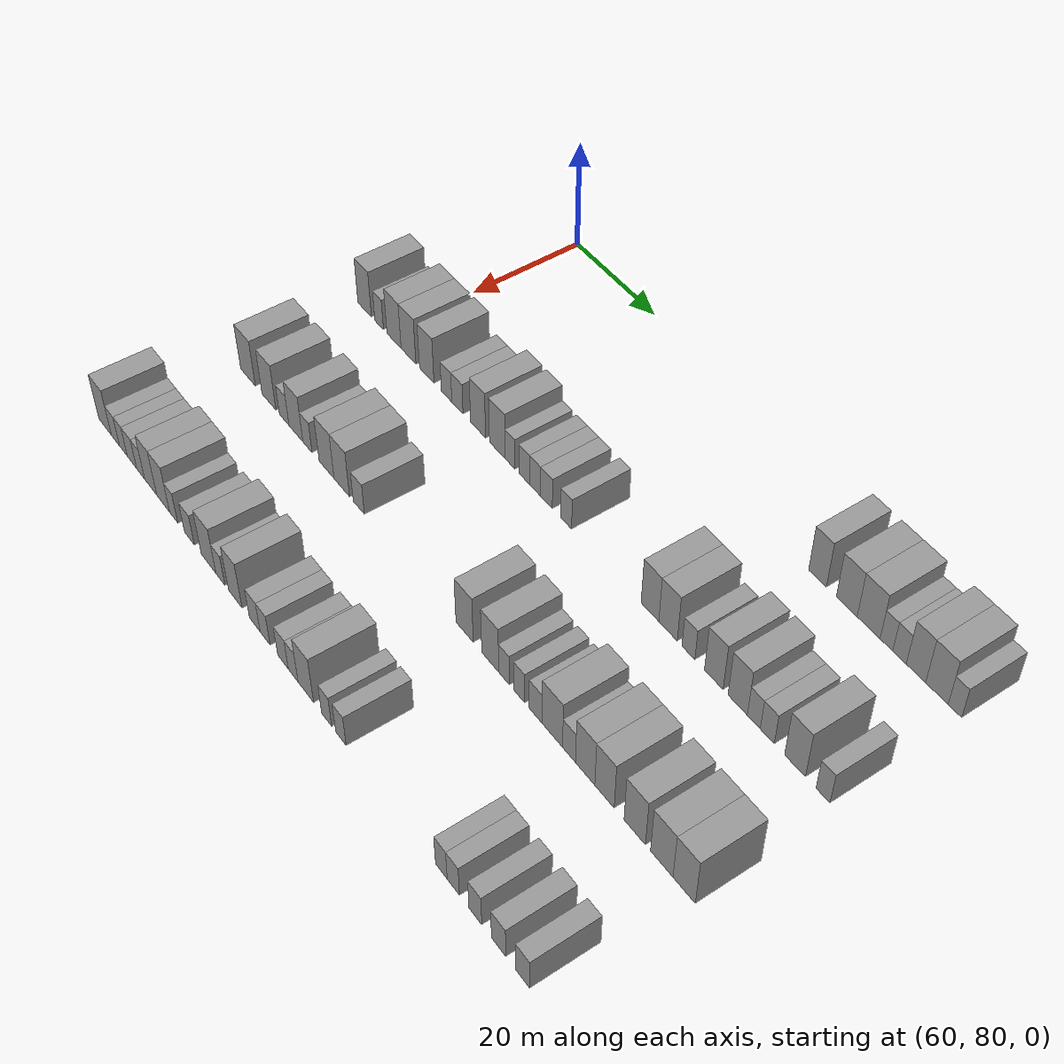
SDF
<sdf version="1.6">
 <world name="default">
  <model name="building_501">
   <static>1</static>
   <pose>69.0000 154.2161 0 0.000000 0.000000 0.000000</pose>
   <link name="link">
    <pose>0 0 4.50 0 0 0</pose>
    <collision name="collision"><geometry><box><size>10.0000 3.6310 9.0000</size></box></geometry></collision>
    <visual name="visual">
     <cast_shadows>0</cast_shadows>
     <geometry><box><size>10.0000 3.6310 9.0000</size></box></geometry>
     <material>
      <script>
       <uri>model://grey_wall/materials/scripts</uri>
       <uri>model://grey_wall/materials/textures</uri>
       <name>vrc/grey_wall</name>
      </script>
     </material>
    </visual>
   </link>
  </model>
  <model name="building_502">
   <static>1</static>
   <pose>69.0000 160.1065 0 0.000000 0.000000 0.000000</pose>
   <link name="link">
    <pose>0 0 4.50 0 0 0</pose>
    <collision name="collision"><geometry><box><size>10.0000 4.1499 9.0000</size></box></geometry></collision>
    <visual name="visual">
     <cast_shadows>0</cast_shadows>
     <geometry><box><size>10.0000 4.1499 9.0000</size></box></geometry>
     <material>
      <script>
       <uri>model://grey_wall/materials/scripts</uri>
       <uri>model://grey_wall/materials/textures</uri>
       <name>vrc/grey_wall</name>
      </script>
     </material>
    </visual>
   </link>
  </model>
  <model name="building_503">
   <static>1</static>
   <pose>69.0000 164.4250 0 0.000000 0.000000 0.000000</pose>
   <link name="link">
    <pose>0 0 4.50 0 0 0</pose>
    <collision name="collision"><geometry><box><size>10.0000 4.4872 9.0000</size></box></geometry></collision>
    <visual name="visual">
     <cast_shadows>0</cast_shadows>
     <geometry><box><size>10.0000 4.4872 9.0000</size></box></geometry>
     <material>
      <script>
       <uri>model://grey_wall/materials/scripts</uri>
       <uri>model://grey_wall/materials/textures</uri>
       <name>vrc/grey_wall</name>
      </script>
     </material>
    </visual>
   </link>
  </model>
  <model name="building_504">
   <static>1</static>
   <pose>69.0000 167.8853 0 0.000000 0.000000 0.000000</pose>
   <link name="link">
    <pose>0 0 3.00 0 0 0</pose>
    <collision name="collision"><geometry><box><size>10.0000 2.4332 6.0000</size></box></geometry></collision>
    <visual name="visual">
     <cast_shadows>0</cast_shadows>
     <geometry><box><size>10.0000 2.4332 6.0000</size></box></geometry>
     <material>
      <script>
       <uri>model://grey_wall/materials/scripts</uri>
       <uri>model://grey_wall/materials/textures</uri>
       <name>vrc/grey_wall</name>
      </script>
     </material>
    </visual>
   </link>
  </model>
  <model name="building_505">
   <static>1</static>
   <pose>69.0000 170.3889 0 0.000000 0.000000 0.000000</pose>
   <link name="link">
    <pose>0 0 3.00 0 0 0</pose>
    <collision name="collision"><geometry><box><size>10.0000 2.5740 6.0000</size></box></geometry></collision>
    <visual name="visual">
     <cast_shadows>0</cast_shadows>
     <geometry><box><size>10.0000 2.5740 6.0000</size></box></geometry>
     <material>
      <script>
       <uri>model://grey_wall/materials/scripts</uri>
       <uri>model://grey_wall/materials/textures</uri>
       <name>vrc/grey_wall</name>
      </script>
     </material>
    </visual>
   </link>
  </model>
  <model name="building_506">
   <static>1</static>
   <pose>69.0000 173.4881 0 0.000000 0.000000 0.000000</pose>
   <link name="link">
    <pose>0 0 4.50 0 0 0</pose>
    <collision name="collision"><geometry><box><size>10.0000 3.6244 9.0000</size></box></geometry></collision>
    <visual name="visual">
     <cast_shadows>0</cast_shadows>
     <geometry><box><size>10.0000 3.6244 9.0000</size></box></geometry>
     <material>
      <script>
       <uri>model://grey_wall/materials/scripts</uri>
       <uri>model://grey_wall/materials/textures</uri>
       <name>vrc/grey_wall</name>
      </script>
     </material>
    </visual>
   </link>
  </model>
  <model name="building_507">
   <static>1</static>
   <pose>69.0000 177.3766 0 0.000000 0.000000 0.000000</pose>
   <link name="link">
    <pose>0 0 4.50 0 0 0</pose>
    <collision name="collision"><geometry><box><size>10.0000 4.1527 9.0000</size></box></geometry></collision>
    <visual name="visual">
     <cast_shadows>0</cast_shadows>
     <geometry><box><size>10.0000 4.1527 9.0000</size></box></geometry>
     <material>
      <script>
       <uri>model://grey_wall/materials/scripts</uri>
       <uri>model://grey_wall/materials/textures</uri>
       <name>vrc/grey_wall</name>
      </script>
     </material>
    </visual>
   </link>
  </model>
  <model name="building_508">
   <static>1</static>
   <pose>69.0000 180.6867 0 0.000000 0.000000 0.000000</pose>
   <link name="link">
    <pose>0 0 3.00 0 0 0</pose>
    <collision name="collision"><geometry><box><size>10.0000 2.4676 6.0000</size></box></geometry></collision>
    <visual name="visual">
     <cast_shadows>0</cast_shadows>
     <geometry><box><size>10.0000 2.4676 6.0000</size></box></geometry>
     <material>
      <script>
       <uri>model://grey_wall/materials/scripts</uri>
       <uri>model://grey_wall/materials/textures</uri>
       <name>vrc/grey_wall</name>
      </script>
     </material>
    </visual>
   </link>
  </model>
  <model name="building_671">
   <static>1</static>
   <pose>91.0000 73.6029 0 0.000000 0.000000 0.000000</pose>
   <link name="link">
    <pose>0 0 4.50 0 0 0</pose>
    <collision name="collision"><geometry><box><size>10.0000 3.9450 9.0000</size></box></geometry></collision>
    <visual name="visual">
     <cast_shadows>0</cast_shadows>
     <geometry><box><size>10.0000 3.9450 9.0000</size></box></geometry>
     <material>
      <script>
       <uri>model://grey_wall/materials/scripts</uri>
       <uri>model://grey_wall/materials/textures</uri>
       <name>vrc/grey_wall</name>
      </script>
     </material>
    </visual>
   </link>
  </model>
  <model name="building_672">
   <static>1</static>
   <pose>91.0000 77.8221 0 0.000000 0.000000 0.000000</pose>
   <link name="link">
    <pose>0 0 3.00 0 0 0</pose>
    <collision name="collision"><geometry><box><size>10.0000 2.4935 6.0000</size></box></geometry></collision>
    <visual name="visual">
     <cast_shadows>0</cast_shadows>
     <geometry><box><size>10.0000 2.4935 6.0000</size></box></geometry>
     <material>
      <script>
       <uri>model://grey_wall/materials/scripts</uri>
       <uri>model://grey_wall/materials/textures</uri>
       <name>vrc/grey_wall</name>
      </script>
     </material>
    </visual>
   </link>
  </model>
  <model name="building_673">
   <static>1</static>
   <pose>91.0000 82.0843 0 0.000000 0.000000 0.000000</pose>
   <link name="link">
    <pose>0 0 4.50 0 0 0</pose>
    <collision name="collision"><geometry><box><size>10.0000 4.0307 9.0000</size></box></geometry></collision>
    <visual name="visual">
     <cast_shadows>0</cast_shadows>
     <geometry><box><size>10.0000 4.0307 9.0000</size></box></geometry>
     <material>
      <script>
       <uri>model://grey_wall/materials/scripts</uri>
       <uri>model://grey_wall/materials/textures</uri>
       <name>vrc/grey_wall</name>
      </script>
     </material>
    </visual>
   </link>
  </model>
  <model name="building_674">
   <static>1</static>
   <pose>91.0000 86.1808 0 0.000000 0.000000 0.000000</pose>
   <link name="link">
    <pose>0 0 4.50 0 0 0</pose>
    <collision name="collision"><geometry><box><size>10.0000 4.1624 9.0000</size></box></geometry></collision>
    <visual name="visual">
     <cast_shadows>0</cast_shadows>
     <geometry><box><size>10.0000 4.1624 9.0000</size></box></geometry>
     <material>
      <script>
       <uri>model://grey_wall/materials/scripts</uri>
       <uri>model://grey_wall/materials/textures</uri>
       <name>vrc/grey_wall</name>
      </script>
     </material>
    </visual>
   </link>
  </model>
  <model name="building_675">
   <static>1</static>
   <pose>91.0000 91.2529 0 0.000000 0.000000 0.000000</pose>
   <link name="link">
    <pose>0 0 4.50 0 0 0</pose>
    <collision name="collision"><geometry><box><size>10.0000 3.9817 9.0000</size></box></geometry></collision>
    <visual name="visual">
     <cast_shadows>0</cast_shadows>
     <geometry><box><size>10.0000 3.9817 9.0000</size></box></geometry>
     <material>
      <script>
       <uri>model://grey_wall/materials/scripts</uri>
       <uri>model://grey_wall/materials/textures</uri>
       <name>vrc/grey_wall</name>
      </script>
     </material>
    </visual>
   </link>
  </model>
  <model name="building_676">
   <static>1</static>
   <pose>91.0000 96.6469 0 0.000000 0.000000 0.000000</pose>
   <link name="link">
    <pose>0 0 3.00 0 0 0</pose>
    <collision name="collision"><geometry><box><size>10.0000 2.8063 6.0000</size></box></geometry></collision>
    <visual name="visual">
     <cast_shadows>0</cast_shadows>
     <geometry><box><size>10.0000 2.8063 6.0000</size></box></geometry>
     <material>
      <script>
       <uri>model://grey_wall/materials/scripts</uri>
       <uri>model://grey_wall/materials/textures</uri>
       <name>vrc/grey_wall</name>
      </script>
     </material>
    </visual>
   </link>
  </model>
  <model name="building_677">
   <static>1</static>
   <pose>91.0000 99.5297 0 0.000000 0.000000 0.000000</pose>
   <link name="link">
    <pose>0 0 3.00 0 0 0</pose>
    <collision name="collision"><geometry><box><size>10.0000 2.9593 6.0000</size></box></geometry></collision>
    <visual name="visual">
     <cast_shadows>0</cast_shadows>
     <geometry><box><size>10.0000 2.9593 6.0000</size></box></geometry>
     <material>
      <script>
       <uri>model://grey_wall/materials/scripts</uri>
       <uri>model://grey_wall/materials/textures</uri>
       <name>vrc/grey_wall</name>
      </script>
     </material>
    </visual>
   </link>
  </model>
  <model name="building_678">
   <static>1</static>
   <pose>91.0000 104.9585 0 0.000000 0.000000 0.000000</pose>
   <link name="link">
    <pose>0 0 4.50 0 0 0</pose>
    <collision name="collision"><geometry><box><size>10.0000 3.8983 9.0000</size></box></geometry></collision>
    <visual name="visual">
     <cast_shadows>0</cast_shadows>
     <geometry><box><size>10.0000 3.8983 9.0000</size></box></geometry>
     <material>
      <script>
       <uri>model://grey_wall/materials/scripts</uri>
       <uri>model://grey_wall/materials/textures</uri>
       <name>vrc/grey_wall</name>
      </script>
     </material>
    </visual>
   </link>
  </model>
  <model name="building_679">
   <static>1</static>
   <pose>91.0000 109.9000 0 0.000000 0.000000 0.000000</pose>
   <link name="link">
    <pose>0 0 4.50 0 0 0</pose>
    <collision name="collision"><geometry><box><size>10.0000 3.9847 9.0000</size></box></geometry></collision>
    <visual name="visual">
     <cast_shadows>0</cast_shadows>
     <geometry><box><size>10.0000 3.9847 9.0000</size></box></geometry>
     <material>
      <script>
       <uri>model://grey_wall/materials/scripts</uri>
       <uri>model://grey_wall/materials/textures</uri>
       <name>vrc/grey_wall</name>
      </script>
     </material>
    </visual>
   </link>
  </model>
  <model name="building_680">
   <static>1</static>
   <pose>91.0000 113.1168 0 0.000000 0.000000 0.000000</pose>
   <link name="link">
    <pose>0 0 3.00 0 0 0</pose>
    <collision name="collision"><geometry><box><size>10.0000 2.4487 6.0000</size></box></geometry></collision>
    <visual name="visual">
     <cast_shadows>0</cast_shadows>
     <geometry><box><size>10.0000 2.4487 6.0000</size></box></geometry>
     <material>
      <script>
       <uri>model://grey_wall/materials/scripts</uri>
       <uri>model://grey_wall/materials/textures</uri>
       <name>vrc/grey_wall</name>
      </script>
     </material>
    </visual>
   </link>
  </model>
  <model name="building_681">
   <static>1</static>
   <pose>91.0000 116.6339 0 0.000000 0.000000 0.000000</pose>
   <link name="link">
    <pose>0 0 3.00 0 0 0</pose>
    <collision name="collision"><geometry><box><size>10.0000 2.5855 6.0000</size></box></geometry></collision>
    <visual name="visual">
     <cast_shadows>0</cast_shadows>
     <geometry><box><size>10.0000 2.5855 6.0000</size></box></geometry>
     <material>
      <script>
       <uri>model://grey_wall/materials/scripts</uri>
       <uri>model://grey_wall/materials/textures</uri>
       <name>vrc/grey_wall</name>
      </script>
     </material>
    </visual>
   </link>
  </model>
  <model name="building_682">
   <static>1</static>
   <pose>91.0000 119.2786 0 0.000000 0.000000 0.000000</pose>
   <link name="link">
    <pose>0 0 3.00 0 0 0</pose>
    <collision name="collision"><geometry><box><size>10.0000 2.7039 6.0000</size></box></geometry></collision>
    <visual name="visual">
     <cast_shadows>0</cast_shadows>
     <geometry><box><size>10.0000 2.7039 6.0000</size></box></geometry>
     <material>
      <script>
       <uri>model://grey_wall/materials/scripts</uri>
       <uri>model://grey_wall/materials/textures</uri>
       <name>vrc/grey_wall</name>
      </script>
     </material>
    </visual>
   </link>
  </model>
  <model name="building_683">
   <static>1</static>
   <pose>91.0000 122.0599 0 0.000000 0.000000 0.000000</pose>
   <link name="link">
    <pose>0 0 3.00 0 0 0</pose>
    <collision name="collision"><geometry><box><size>10.0000 2.8586 6.0000</size></box></geometry></collision>
    <visual name="visual">
     <cast_shadows>0</cast_shadows>
     <geometry><box><size>10.0000 2.8586 6.0000</size></box></geometry>
     <material>
      <script>
       <uri>model://grey_wall/materials/scripts</uri>
       <uri>model://grey_wall/materials/textures</uri>
       <name>vrc/grey_wall</name>
      </script>
     </material>
    </visual>
   </link>
  </model>
  <model name="building_684">
   <static>1</static>
   <pose>91.0000 126.7881 0 0.000000 0.000000 0.000000</pose>
   <link name="link">
    <pose>0 0 3.00 0 0 0</pose>
    <collision name="collision"><geometry><box><size>10.0000 2.5979 6.0000</size></box></geometry></collision>
    <visual name="visual">
     <cast_shadows>0</cast_shadows>
     <geometry><box><size>10.0000 2.5979 6.0000</size></box></geometry>
     <material>
      <script>
       <uri>model://grey_wall/materials/scripts</uri>
       <uri>model://grey_wall/materials/textures</uri>
       <name>vrc/grey_wall</name>
      </script>
     </material>
    </visual>
   </link>
  </model>
  <model name="building_685">
   <static>1</static>
   <pose>91.0000 145.8479 0 0.000000 0.000000 0.000000</pose>
   <link name="link">
    <pose>0 0 4.50 0 0 0</pose>
    <collision name="collision"><geometry><box><size>10.0000 3.8405 9.0000</size></box></geometry></collision>
    <visual name="visual">
     <cast_shadows>0</cast_shadows>
     <geometry><box><size>10.0000 3.8405 9.0000</size></box></geometry>
     <material>
      <script>
       <uri>model://grey_wall/materials/scripts</uri>
       <uri>model://grey_wall/materials/textures</uri>
       <name>vrc/grey_wall</name>
      </script>
     </material>
    </visual>
   </link>
  </model>
  <model name="building_686">
   <static>1</static>
   <pose>91.0000 149.7458 0 0.000000 0.000000 0.000000</pose>
   <link name="link">
    <pose>0 0 4.50 0 0 0</pose>
    <collision name="collision"><geometry><box><size>10.0000 3.9554 9.0000</size></box></geometry></collision>
    <visual name="visual">
     <cast_shadows>0</cast_shadows>
     <geometry><box><size>10.0000 3.9554 9.0000</size></box></geometry>
     <material>
      <script>
       <uri>model://grey_wall/materials/scripts</uri>
       <uri>model://grey_wall/materials/textures</uri>
       <name>vrc/grey_wall</name>
      </script>
     </material>
    </visual>
   </link>
  </model>
  <model name="building_687">
   <static>1</static>
   <pose>91.0000 154.0762 0 0.000000 0.000000 0.000000</pose>
   <link name="link">
    <pose>0 0 3.00 0 0 0</pose>
    <collision name="collision"><geometry><box><size>10.0000 2.7052 6.0000</size></box></geometry></collision>
    <visual name="visual">
     <cast_shadows>0</cast_shadows>
     <geometry><box><size>10.0000 2.7052 6.0000</size></box></geometry>
     <material>
      <script>
       <uri>model://grey_wall/materials/scripts</uri>
       <uri>model://grey_wall/materials/textures</uri>
       <name>vrc/grey_wall</name>
      </script>
     </material>
    </visual>
   </link>
  </model>
  <model name="building_688">
   <static>1</static>
   <pose>91.0000 159.3358 0 0.000000 0.000000 0.000000</pose>
   <link name="link">
    <pose>0 0 4.50 0 0 0</pose>
    <collision name="collision"><geometry><box><size>10.0000 3.8141 9.0000</size></box></geometry></collision>
    <visual name="visual">
     <cast_shadows>0</cast_shadows>
     <geometry><box><size>10.0000 3.8141 9.0000</size></box></geometry>
     <material>
      <script>
       <uri>model://grey_wall/materials/scripts</uri>
       <uri>model://grey_wall/materials/textures</uri>
       <name>vrc/grey_wall</name>
      </script>
     </material>
    </visual>
   </link>
  </model>
  <model name="building_689">
   <static>1</static>
   <pose>91.0000 164.1728 0 0.000000 0.000000 0.000000</pose>
   <link name="link">
    <pose>0 0 4.50 0 0 0</pose>
    <collision name="collision"><geometry><box><size>10.0000 3.8598 9.0000</size></box></geometry></collision>
    <visual name="visual">
     <cast_shadows>0</cast_shadows>
     <geometry><box><size>10.0000 3.8598 9.0000</size></box></geometry>
     <material>
      <script>
       <uri>model://grey_wall/materials/scripts</uri>
       <uri>model://grey_wall/materials/textures</uri>
       <name>vrc/grey_wall</name>
      </script>
     </material>
    </visual>
   </link>
  </model>
  <model name="building_690">
   <static>1</static>
   <pose>91.0000 167.3765 0 0.000000 0.000000 0.000000</pose>
   <link name="link">
    <pose>0 0 3.00 0 0 0</pose>
    <collision name="collision"><geometry><box><size>10.0000 2.5475 6.0000</size></box></geometry></collision>
    <visual name="visual">
     <cast_shadows>0</cast_shadows>
     <geometry><box><size>10.0000 2.5475 6.0000</size></box></geometry>
     <material>
      <script>
       <uri>model://grey_wall/materials/scripts</uri>
       <uri>model://grey_wall/materials/textures</uri>
       <name>vrc/grey_wall</name>
      </script>
     </material>
    </visual>
   </link>
  </model>
  <model name="building_691">
   <static>1</static>
   <pose>91.0000 170.0229 0 0.000000 0.000000 0.000000</pose>
   <link name="link">
    <pose>0 0 3.00 0 0 0</pose>
    <collision name="collision"><geometry><box><size>10.0000 2.7454 6.0000</size></box></geometry></collision>
    <visual name="visual">
     <cast_shadows>0</cast_shadows>
     <geometry><box><size>10.0000 2.7454 6.0000</size></box></geometry>
     <material>
      <script>
       <uri>model://grey_wall/materials/scripts</uri>
       <uri>model://grey_wall/materials/textures</uri>
       <name>vrc/grey_wall</name>
      </script>
     </material>
    </visual>
   </link>
  </model>
  <model name="building_692">
   <static>1</static>
   <pose>91.0000 175.3653 0 0.000000 0.000000 0.000000</pose>
   <link name="link">
    <pose>0 0 4.50 0 0 0</pose>
    <collision name="collision"><geometry><box><size>10.0000 3.9392 9.0000</size></box></geometry></collision>
    <visual name="visual">
     <cast_shadows>0</cast_shadows>
     <geometry><box><size>10.0000 3.9392 9.0000</size></box></geometry>
     <material>
      <script>
       <uri>model://grey_wall/materials/scripts</uri>
       <uri>model://grey_wall/materials/textures</uri>
       <name>vrc/grey_wall</name>
      </script>
     </material>
    </visual>
   </link>
  </model>
  <model name="building_693">
   <static>1</static>
   <pose>91.0000 180.6300 0 0.000000 0.000000 0.000000</pose>
   <link name="link">
    <pose>0 0 3.00 0 0 0</pose>
    <collision name="collision"><geometry><box><size>10.0000 2.5902 6.0000</size></box></geometry></collision>
    <visual name="visual">
     <cast_shadows>0</cast_shadows>
     <geometry><box><size>10.0000 2.5902 6.0000</size></box></geometry>
     <material>
      <script>
       <uri>model://grey_wall/materials/scripts</uri>
       <uri>model://grey_wall/materials/textures</uri>
       <name>vrc/grey_wall</name>
      </script>
     </material>
    </visual>
   </link>
  </model>
  <model name="building_857">
   <static>1</static>
   <pose>113.0000 76.3529 0 0.000000 0.000000 0.000000</pose>
   <link name="link">
    <pose>0 0 4.50 0 0 0</pose>
    <collision name="collision"><geometry><box><size>10.0000 4.4462 9.0000</size></box></geometry></collision>
    <visual name="visual">
     <cast_shadows>0</cast_shadows>
     <geometry><box><size>10.0000 4.4462 9.0000</size></box></geometry>
     <material>
      <script>
       <uri>model://grey_wall/materials/scripts</uri>
       <uri>model://grey_wall/materials/textures</uri>
       <name>vrc/grey_wall</name>
      </script>
     </material>
    </visual>
   </link>
  </model>
  <model name="building_858">
   <static>1</static>
   <pose>113.0000 82.6550 0 0.000000 0.000000 0.000000</pose>
   <link name="link">
    <pose>0 0 4.50 0 0 0</pose>
    <collision name="collision"><geometry><box><size>10.0000 4.1581 9.0000</size></box></geometry></collision>
    <visual name="visual">
     <cast_shadows>0</cast_shadows>
     <geometry><box><size>10.0000 4.1581 9.0000</size></box></geometry>
     <material>
      <script>
       <uri>model://grey_wall/materials/scripts</uri>
       <uri>model://grey_wall/materials/textures</uri>
       <name>vrc/grey_wall</name>
      </script>
     </material>
    </visual>
   </link>
  </model>
  <model name="building_859">
   <static>1</static>
   <pose>113.0000 87.1227 0 0.000000 0.000000 0.000000</pose>
   <link name="link">
    <pose>0 0 3.00 0 0 0</pose>
    <collision name="collision"><geometry><box><size>10.0000 2.7773 6.0000</size></box></geometry></collision>
    <visual name="visual">
     <cast_shadows>0</cast_shadows>
     <geometry><box><size>10.0000 2.7773 6.0000</size></box></geometry>
     <material>
      <script>
       <uri>model://grey_wall/materials/scripts</uri>
       <uri>model://grey_wall/materials/textures</uri>
       <name>vrc/grey_wall</name>
      </script>
     </material>
    </visual>
   </link>
  </model>
  <model name="building_860">
   <static>1</static>
   <pose>113.0000 90.5092 0 0.000000 0.000000 0.000000</pose>
   <link name="link">
    <pose>0 0 4.50 0 0 0</pose>
    <collision name="collision"><geometry><box><size>10.0000 3.9956 9.0000</size></box></geometry></collision>
    <visual name="visual">
     <cast_shadows>0</cast_shadows>
     <geometry><box><size>10.0000 3.9956 9.0000</size></box></geometry>
     <material>
      <script>
       <uri>model://grey_wall/materials/scripts</uri>
       <uri>model://grey_wall/materials/textures</uri>
       <name>vrc/grey_wall</name>
      </script>
     </material>
    </visual>
   </link>
  </model>
  <model name="building_861">
   <static>1</static>
   <pose>113.0000 93.7954 0 0.000000 0.000000 0.000000</pose>
   <link name="link">
    <pose>0 0 3.00 0 0 0</pose>
    <collision name="collision"><geometry><box><size>10.0000 2.5767 6.0000</size></box></geometry></collision>
    <visual name="visual">
     <cast_shadows>0</cast_shadows>
     <geometry><box><size>10.0000 2.5767 6.0000</size></box></geometry>
     <material>
      <script>
       <uri>model://grey_wall/materials/scripts</uri>
       <uri>model://grey_wall/materials/textures</uri>
       <name>vrc/grey_wall</name>
      </script>
     </material>
    </visual>
   </link>
  </model>
  <model name="building_862">
   <static>1</static>
   <pose>113.0000 99.1512 0 0.000000 0.000000 0.000000</pose>
   <link name="link">
    <pose>0 0 4.50 0 0 0</pose>
    <collision name="collision"><geometry><box><size>10.0000 4.1348 9.0000</size></box></geometry></collision>
    <visual name="visual">
     <cast_shadows>0</cast_shadows>
     <geometry><box><size>10.0000 4.1348 9.0000</size></box></geometry>
     <material>
      <script>
       <uri>model://grey_wall/materials/scripts</uri>
       <uri>model://grey_wall/materials/textures</uri>
       <name>vrc/grey_wall</name>
      </script>
     </material>
    </visual>
   </link>
  </model>
  <model name="building_863">
   <static>1</static>
   <pose>113.0000 103.3302 0 0.000000 0.000000 0.000000</pose>
   <link name="link">
    <pose>0 0 4.50 0 0 0</pose>
    <collision name="collision"><geometry><box><size>10.0000 4.2232 9.0000</size></box></geometry></collision>
    <visual name="visual">
     <cast_shadows>0</cast_shadows>
     <geometry><box><size>10.0000 4.2232 9.0000</size></box></geometry>
     <material>
      <script>
       <uri>model://grey_wall/materials/scripts</uri>
       <uri>model://grey_wall/materials/textures</uri>
       <name>vrc/grey_wall</name>
      </script>
     </material>
    </visual>
   </link>
  </model>
  <model name="building_864">
   <static>1</static>
   <pose>113.0000 107.9316 0 0.000000 0.000000 0.000000</pose>
   <link name="link">
    <pose>0 0 3.00 0 0 0</pose>
    <collision name="collision"><geometry><box><size>10.0000 2.9796 6.0000</size></box></geometry></collision>
    <visual name="visual">
     <cast_shadows>0</cast_shadows>
     <geometry><box><size>10.0000 2.9796 6.0000</size></box></geometry>
     <material>
      <script>
       <uri>model://grey_wall/materials/scripts</uri>
       <uri>model://grey_wall/materials/textures</uri>
       <name>vrc/grey_wall</name>
      </script>
     </material>
    </visual>
   </link>
  </model>
  <model name="building_865">
   <static>1</static>
   <pose>113.0000 134.5633 0 0.000000 0.000000 0.000000</pose>
   <link name="link">
    <pose>0 0 4.50 0 0 0</pose>
    <collision name="collision"><geometry><box><size>10.0000 4.0946 9.0000</size></box></geometry></collision>
    <visual name="visual">
     <cast_shadows>0</cast_shadows>
     <geometry><box><size>10.0000 4.0946 9.0000</size></box></geometry>
     <material>
      <script>
       <uri>model://grey_wall/materials/scripts</uri>
       <uri>model://grey_wall/materials/textures</uri>
       <name>vrc/grey_wall</name>
      </script>
     </material>
    </visual>
   </link>
  </model>
  <model name="building_866">
   <static>1</static>
   <pose>113.0000 140.5781 0 0.000000 0.000000 0.000000</pose>
   <link name="link">
    <pose>0 0 4.50 0 0 0</pose>
    <collision name="collision"><geometry><box><size>10.0000 3.9350 9.0000</size></box></geometry></collision>
    <visual name="visual">
     <cast_shadows>0</cast_shadows>
     <geometry><box><size>10.0000 3.9350 9.0000</size></box></geometry>
     <material>
      <script>
       <uri>model://grey_wall/materials/scripts</uri>
       <uri>model://grey_wall/materials/textures</uri>
       <name>vrc/grey_wall</name>
      </script>
     </material>
    </visual>
   </link>
  </model>
  <model name="building_867">
   <static>1</static>
   <pose>113.0000 143.7592 0 0.000000 0.000000 0.000000</pose>
   <link name="link">
    <pose>0 0 3.00 0 0 0</pose>
    <collision name="collision"><geometry><box><size>10.0000 2.4272 6.0000</size></box></geometry></collision>
    <visual name="visual">
     <cast_shadows>0</cast_shadows>
     <geometry><box><size>10.0000 2.4272 6.0000</size></box></geometry>
     <material>
      <script>
       <uri>model://grey_wall/materials/scripts</uri>
       <uri>model://grey_wall/materials/textures</uri>
       <name>vrc/grey_wall</name>
      </script>
     </material>
    </visual>
   </link>
  </model>
  <model name="building_868">
   <static>1</static>
   <pose>113.0000 147.1891 0 0.000000 0.000000 0.000000</pose>
   <link name="link">
    <pose>0 0 3.00 0 0 0</pose>
    <collision name="collision"><geometry><box><size>10.0000 2.4325 6.0000</size></box></geometry></collision>
    <visual name="visual">
     <cast_shadows>0</cast_shadows>
     <geometry><box><size>10.0000 2.4325 6.0000</size></box></geometry>
     <material>
      <script>
       <uri>model://grey_wall/materials/scripts</uri>
       <uri>model://grey_wall/materials/textures</uri>
       <name>vrc/grey_wall</name>
      </script>
     </material>
    </visual>
   </link>
  </model>
  <model name="building_869">
   <static>1</static>
   <pose>113.0000 150.8046 0 0.000000 0.000000 0.000000</pose>
   <link name="link">
    <pose>0 0 3.00 0 0 0</pose>
    <collision name="collision"><geometry><box><size>10.0000 2.7986 6.0000</size></box></geometry></collision>
    <visual name="visual">
     <cast_shadows>0</cast_shadows>
     <geometry><box><size>10.0000 2.7986 6.0000</size></box></geometry>
     <material>
      <script>
       <uri>model://grey_wall/materials/scripts</uri>
       <uri>model://grey_wall/materials/textures</uri>
       <name>vrc/grey_wall</name>
      </script>
     </material>
    </visual>
   </link>
  </model>
  <model name="building_870">
   <static>1</static>
   <pose>113.0000 154.4270 0 0.000000 0.000000 0.000000</pose>
   <link name="link">
    <pose>0 0 4.50 0 0 0</pose>
    <collision name="collision"><geometry><box><size>10.0000 4.4460 9.0000</size></box></geometry></collision>
    <visual name="visual">
     <cast_shadows>0</cast_shadows>
     <geometry><box><size>10.0000 4.4460 9.0000</size></box></geometry>
     <material>
      <script>
       <uri>model://grey_wall/materials/scripts</uri>
       <uri>model://grey_wall/materials/textures</uri>
       <name>vrc/grey_wall</name>
      </script>
     </material>
    </visual>
   </link>
  </model>
  <model name="building_871">
   <static>1</static>
   <pose>113.0000 158.0228 0 0.000000 0.000000 0.000000</pose>
   <link name="link">
    <pose>0 0 3.00 0 0 0</pose>
    <collision name="collision"><geometry><box><size>10.0000 2.7457 6.0000</size></box></geometry></collision>
    <visual name="visual">
     <cast_shadows>0</cast_shadows>
     <geometry><box><size>10.0000 2.7457 6.0000</size></box></geometry>
     <material>
      <script>
       <uri>model://grey_wall/materials/scripts</uri>
       <uri>model://grey_wall/materials/textures</uri>
       <name>vrc/grey_wall</name>
      </script>
     </material>
    </visual>
   </link>
  </model>
  <model name="building_872">
   <static>1</static>
   <pose>113.0000 161.4268 0 0.000000 0.000000 0.000000</pose>
   <link name="link">
    <pose>0 0 4.50 0 0 0</pose>
    <collision name="collision"><geometry><box><size>10.0000 4.0623 9.0000</size></box></geometry></collision>
    <visual name="visual">
     <cast_shadows>0</cast_shadows>
     <geometry><box><size>10.0000 4.0623 9.0000</size></box></geometry>
     <material>
      <script>
       <uri>model://grey_wall/materials/scripts</uri>
       <uri>model://grey_wall/materials/textures</uri>
       <name>vrc/grey_wall</name>
      </script>
     </material>
    </visual>
   </link>
  </model>
  <model name="building_873">
   <static>1</static>
   <pose>113.0000 165.4448 0 0.000000 0.000000 0.000000</pose>
   <link name="link">
    <pose>0 0 4.50 0 0 0</pose>
    <collision name="collision"><geometry><box><size>10.0000 3.9738 9.0000</size></box></geometry></collision>
    <visual name="visual">
     <cast_shadows>0</cast_shadows>
     <geometry><box><size>10.0000 3.9738 9.0000</size></box></geometry>
     <material>
      <script>
       <uri>model://grey_wall/materials/scripts</uri>
       <uri>model://grey_wall/materials/textures</uri>
       <name>vrc/grey_wall</name>
      </script>
     </material>
    </visual>
   </link>
  </model>
  <model name="building_874">
   <static>1</static>
   <pose>113.0000 171.5620 0 0.000000 0.000000 0.000000</pose>
   <link name="link">
    <pose>0 0 4.50 0 0 0</pose>
    <collision name="collision"><geometry><box><size>10.0000 4.2605 9.0000</size></box></geometry></collision>
    <visual name="visual">
     <cast_shadows>0</cast_shadows>
     <geometry><box><size>10.0000 4.2605 9.0000</size></box></geometry>
     <material>
      <script>
       <uri>model://grey_wall/materials/scripts</uri>
       <uri>model://grey_wall/materials/textures</uri>
       <name>vrc/grey_wall</name>
      </script>
     </material>
    </visual>
   </link>
  </model>
  <model name="building_875">
   <static>1</static>
   <pose>113.0000 176.8735 0 0.000000 0.000000 0.000000</pose>
   <link name="link">
    <pose>0 0 4.50 0 0 0</pose>
    <collision name="collision"><geometry><box><size>10.0000 4.3626 9.0000</size></box></geometry></collision>
    <visual name="visual">
     <cast_shadows>0</cast_shadows>
     <geometry><box><size>10.0000 4.3626 9.0000</size></box></geometry>
     <material>
      <script>
       <uri>model://grey_wall/materials/scripts</uri>
       <uri>model://grey_wall/materials/textures</uri>
       <name>vrc/grey_wall</name>
      </script>
     </material>
    </visual>
   </link>
  </model>
  <model name="building_876">
   <static>1</static>
   <pose>113.0000 181.1765 0 0.000000 0.000000 0.000000</pose>
   <link name="link">
    <pose>0 0 4.50 0 0 0</pose>
    <collision name="collision"><geometry><box><size>10.0000 4.2434 9.0000</size></box></geometry></collision>
    <visual name="visual">
     <cast_shadows>0</cast_shadows>
     <geometry><box><size>10.0000 4.2434 9.0000</size></box></geometry>
     <material>
      <script>
       <uri>model://grey_wall/materials/scripts</uri>
       <uri>model://grey_wall/materials/textures</uri>
       <name>vrc/grey_wall</name>
      </script>
     </material>
    </visual>
   </link>
  </model>
  <model name="building_1048">
   <static>1</static>
   <pose>135.0000 73.5110 0 0.000000 0.000000 0.000000</pose>
   <link name="link">
    <pose>0 0 4.50 0 0 0</pose>
    <collision name="collision"><geometry><box><size>10.0000 4.0279 9.0000</size></box></geometry></collision>
    <visual name="visual">
     <cast_shadows>0</cast_shadows>
     <geometry><box><size>10.0000 4.0279 9.0000</size></box></geometry>
     <material>
      <script>
       <uri>model://grey_wall/materials/scripts</uri>
       <uri>model://grey_wall/materials/textures</uri>
       <name>vrc/grey_wall</name>
      </script>
     </material>
    </visual>
   </link>
  </model>
  <model name="building_1049">
   <static>1</static>
   <pose>135.0000 76.8470 0 0.000000 0.000000 0.000000</pose>
   <link name="link">
    <pose>0 0 3.00 0 0 0</pose>
    <collision name="collision"><geometry><box><size>10.0000 2.6442 6.0000</size></box></geometry></collision>
    <visual name="visual">
     <cast_shadows>0</cast_shadows>
     <geometry><box><size>10.0000 2.6442 6.0000</size></box></geometry>
     <material>
      <script>
       <uri>model://grey_wall/materials/scripts</uri>
       <uri>model://grey_wall/materials/textures</uri>
       <name>vrc/grey_wall</name>
      </script>
     </material>
    </visual>
   </link>
  </model>
  <model name="building_1050">
   <static>1</static>
   <pose>135.0000 79.3854 0 0.000000 0.000000 0.000000</pose>
   <link name="link">
    <pose>0 0 3.00 0 0 0</pose>
    <collision name="collision"><geometry><box><size>10.0000 2.4326 6.0000</size></box></geometry></collision>
    <visual name="visual">
     <cast_shadows>0</cast_shadows>
     <geometry><box><size>10.0000 2.4326 6.0000</size></box></geometry>
     <material>
      <script>
       <uri>model://grey_wall/materials/scripts</uri>
       <uri>model://grey_wall/materials/textures</uri>
       <name>vrc/grey_wall</name>
      </script>
     </material>
    </visual>
   </link>
  </model>
  <model name="building_1051">
   <static>1</static>
   <pose>135.0000 82.0893 0 0.000000 0.000000 0.000000</pose>
   <link name="link">
    <pose>0 0 3.00 0 0 0</pose>
    <collision name="collision"><geometry><box><size>10.0000 2.9753 6.0000</size></box></geometry></collision>
    <visual name="visual">
     <cast_shadows>0</cast_shadows>
     <geometry><box><size>10.0000 2.9753 6.0000</size></box></geometry>
     <material>
      <script>
       <uri>model://grey_wall/materials/scripts</uri>
       <uri>model://grey_wall/materials/textures</uri>
       <name>vrc/grey_wall</name>
      </script>
     </material>
    </visual>
   </link>
  </model>
  <model name="building_1052">
   <static>1</static>
   <pose>135.0000 84.8053 0 0.000000 0.000000 0.000000</pose>
   <link name="link">
    <pose>0 0 3.00 0 0 0</pose>
    <collision name="collision"><geometry><box><size>10.0000 2.4566 6.0000</size></box></geometry></collision>
    <visual name="visual">
     <cast_shadows>0</cast_shadows>
     <geometry><box><size>10.0000 2.4566 6.0000</size></box></geometry>
     <material>
      <script>
       <uri>model://grey_wall/materials/scripts</uri>
       <uri>model://grey_wall/materials/textures</uri>
       <name>vrc/grey_wall</name>
      </script>
     </material>
    </visual>
   </link>
  </model>
  <model name="building_1053">
   <static>1</static>
   <pose>135.0000 87.8924 0 0.000000 0.000000 0.000000</pose>
   <link name="link">
    <pose>0 0 4.50 0 0 0</pose>
    <collision name="collision"><geometry><box><size>10.0000 3.7176 9.0000</size></box></geometry></collision>
    <visual name="visual">
     <cast_shadows>0</cast_shadows>
     <geometry><box><size>10.0000 3.7176 9.0000</size></box></geometry>
     <material>
      <script>
       <uri>model://grey_wall/materials/scripts</uri>
       <uri>model://grey_wall/materials/textures</uri>
       <name>vrc/grey_wall</name>
      </script>
     </material>
    </visual>
   </link>
  </model>
  <model name="building_1054">
   <static>1</static>
   <pose>135.0000 91.6742 0 0.000000 0.000000 0.000000</pose>
   <link name="link">
    <pose>0 0 4.50 0 0 0</pose>
    <collision name="collision"><geometry><box><size>10.0000 3.8459 9.0000</size></box></geometry></collision>
    <visual name="visual">
     <cast_shadows>0</cast_shadows>
     <geometry><box><size>10.0000 3.8459 9.0000</size></box></geometry>
     <material>
      <script>
       <uri>model://grey_wall/materials/scripts</uri>
       <uri>model://grey_wall/materials/textures</uri>
       <name>vrc/grey_wall</name>
      </script>
     </material>
    </visual>
   </link>
  </model>
  <model name="building_1055">
   <static>1</static>
   <pose>135.0000 94.8050 0 0.000000 0.000000 0.000000</pose>
   <link name="link">
    <pose>0 0 3.00 0 0 0</pose>
    <collision name="collision"><geometry><box><size>10.0000 2.4157 6.0000</size></box></geometry></collision>
    <visual name="visual">
     <cast_shadows>0</cast_shadows>
     <geometry><box><size>10.0000 2.4157 6.0000</size></box></geometry>
     <material>
      <script>
       <uri>model://grey_wall/materials/scripts</uri>
       <uri>model://grey_wall/materials/textures</uri>
       <name>vrc/grey_wall</name>
      </script>
     </material>
    </visual>
   </link>
  </model>
  <model name="building_1056">
   <static>1</static>
   <pose>135.0000 99.4468 0 0.000000 0.000000 0.000000</pose>
   <link name="link">
    <pose>0 0 3.00 0 0 0</pose>
    <collision name="collision"><geometry><box><size>10.0000 2.8678 6.0000</size></box></geometry></collision>
    <visual name="visual">
     <cast_shadows>0</cast_shadows>
     <geometry><box><size>10.0000 2.8678 6.0000</size></box></geometry>
     <material>
      <script>
       <uri>model://grey_wall/materials/scripts</uri>
       <uri>model://grey_wall/materials/textures</uri>
       <name>vrc/grey_wall</name>
      </script>
     </material>
    </visual>
   </link>
  </model>
  <model name="building_1057">
   <static>1</static>
   <pose>135.0000 104.9571 0 0.000000 0.000000 0.000000</pose>
   <link name="link">
    <pose>0 0 4.50 0 0 0</pose>
    <collision name="collision"><geometry><box><size>10.0000 4.1529 9.0000</size></box></geometry></collision>
    <visual name="visual">
     <cast_shadows>0</cast_shadows>
     <geometry><box><size>10.0000 4.1529 9.0000</size></box></geometry>
     <material>
      <script>
       <uri>model://grey_wall/materials/scripts</uri>
       <uri>model://grey_wall/materials/textures</uri>
       <name>vrc/grey_wall</name>
      </script>
     </material>
    </visual>
   </link>
  </model>
  <model name="building_1058">
   <static>1</static>
   <pose>135.0000 108.2947 0 0.000000 0.000000 0.000000</pose>
   <link name="link">
    <pose>0 0 3.00 0 0 0</pose>
    <collision name="collision"><geometry><box><size>10.0000 2.5223 6.0000</size></box></geometry></collision>
    <visual name="visual">
     <cast_shadows>0</cast_shadows>
     <geometry><box><size>10.0000 2.5223 6.0000</size></box></geometry>
     <material>
      <script>
       <uri>model://grey_wall/materials/scripts</uri>
       <uri>model://grey_wall/materials/textures</uri>
       <name>vrc/grey_wall</name>
      </script>
     </material>
    </visual>
   </link>
  </model>
  <model name="building_1059">
   <static>1</static>
   <pose>135.0000 112.4159 0 0.000000 0.000000 0.000000</pose>
   <link name="link">
    <pose>0 0 4.50 0 0 0</pose>
    <collision name="collision"><geometry><box><size>10.0000 3.7201 9.0000</size></box></geometry></collision>
    <visual name="visual">
     <cast_shadows>0</cast_shadows>
     <geometry><box><size>10.0000 3.7201 9.0000</size></box></geometry>
     <material>
      <script>
       <uri>model://grey_wall/materials/scripts</uri>
       <uri>model://grey_wall/materials/textures</uri>
       <name>vrc/grey_wall</name>
      </script>
     </material>
    </visual>
   </link>
  </model>
  <model name="building_1060">
   <static>1</static>
   <pose>135.0000 117.7207 0 0.000000 0.000000 0.000000</pose>
   <link name="link">
    <pose>0 0 3.00 0 0 0</pose>
    <collision name="collision"><geometry><box><size>10.0000 2.8896 6.0000</size></box></geometry></collision>
    <visual name="visual">
     <cast_shadows>0</cast_shadows>
     <geometry><box><size>10.0000 2.8896 6.0000</size></box></geometry>
     <material>
      <script>
       <uri>model://grey_wall/materials/scripts</uri>
       <uri>model://grey_wall/materials/textures</uri>
       <name>vrc/grey_wall</name>
      </script>
     </material>
    </visual>
   </link>
  </model>
  <model name="building_1061">
   <static>1</static>
   <pose>135.0000 120.4806 0 0.000000 0.000000 0.000000</pose>
   <link name="link">
    <pose>0 0 3.00 0 0 0</pose>
    <collision name="collision"><geometry><box><size>10.0000 2.6302 6.0000</size></box></geometry></collision>
    <visual name="visual">
     <cast_shadows>0</cast_shadows>
     <geometry><box><size>10.0000 2.6302 6.0000</size></box></geometry>
     <material>
      <script>
       <uri>model://grey_wall/materials/scripts</uri>
       <uri>model://grey_wall/materials/textures</uri>
       <name>vrc/grey_wall</name>
      </script>
     </material>
    </visual>
   </link>
  </model>
  <model name="building_1062">
   <static>1</static>
   <pose>135.0000 125.1815 0 0.000000 0.000000 0.000000</pose>
   <link name="link">
    <pose>0 0 3.00 0 0 0</pose>
    <collision name="collision"><geometry><box><size>10.0000 2.7716 6.0000</size></box></geometry></collision>
    <visual name="visual">
     <cast_shadows>0</cast_shadows>
     <geometry><box><size>10.0000 2.7716 6.0000</size></box></geometry>
     <material>
      <script>
       <uri>model://grey_wall/materials/scripts</uri>
       <uri>model://grey_wall/materials/textures</uri>
       <name>vrc/grey_wall</name>
      </script>
     </material>
    </visual>
   </link>
  </model>
  <model name="building_1063">
   <static>1</static>
   <pose>135.0000 127.8080 0 0.000000 0.000000 0.000000</pose>
   <link name="link">
    <pose>0 0 3.00 0 0 0</pose>
    <collision name="collision"><geometry><box><size>10.0000 2.4814 6.0000</size></box></geometry></collision>
    <visual name="visual">
     <cast_shadows>0</cast_shadows>
     <geometry><box><size>10.0000 2.4814 6.0000</size></box></geometry>
     <material>
      <script>
       <uri>model://grey_wall/materials/scripts</uri>
       <uri>model://grey_wall/materials/textures</uri>
       <name>vrc/grey_wall</name>
      </script>
     </material>
    </visual>
   </link>
  </model>
  <model name="building_1064">
   <static>1</static>
   <pose>135.0000 131.0123 0 0.000000 0.000000 0.000000</pose>
   <link name="link">
    <pose>0 0 4.50 0 0 0</pose>
    <collision name="collision"><geometry><box><size>10.0000 3.9272 9.0000</size></box></geometry></collision>
    <visual name="visual">
     <cast_shadows>0</cast_shadows>
     <geometry><box><size>10.0000 3.9272 9.0000</size></box></geometry>
     <material>
      <script>
       <uri>model://grey_wall/materials/scripts</uri>
       <uri>model://grey_wall/materials/textures</uri>
       <name>vrc/grey_wall</name>
      </script>
     </material>
    </visual>
   </link>
  </model>
  <model name="building_1065">
   <static>1</static>
   <pose>135.0000 136.2072 0 0.000000 0.000000 0.000000</pose>
   <link name="link">
    <pose>0 0 3.00 0 0 0</pose>
    <collision name="collision"><geometry><box><size>10.0000 2.4626 6.0000</size></box></geometry></collision>
    <visual name="visual">
     <cast_shadows>0</cast_shadows>
     <geometry><box><size>10.0000 2.4626 6.0000</size></box></geometry>
     <material>
      <script>
       <uri>model://grey_wall/materials/scripts</uri>
       <uri>model://grey_wall/materials/textures</uri>
       <name>vrc/grey_wall</name>
      </script>
     </material>
    </visual>
   </link>
  </model>
  <model name="building_1066">
   <static>1</static>
   <pose>135.0000 139.6991 0 0.000000 0.000000 0.000000</pose>
   <link name="link">
    <pose>0 0 3.00 0 0 0</pose>
    <collision name="collision"><geometry><box><size>10.0000 2.5211 6.0000</size></box></geometry></collision>
    <visual name="visual">
     <cast_shadows>0</cast_shadows>
     <geometry><box><size>10.0000 2.5211 6.0000</size></box></geometry>
     <material>
      <script>
       <uri>model://grey_wall/materials/scripts</uri>
       <uri>model://grey_wall/materials/textures</uri>
       <name>vrc/grey_wall</name>
      </script>
     </material>
    </visual>
   </link>
  </model>
  <model name="building_1067">
   <static>1</static>
   <pose>135.0000 162.7227 0 0.000000 0.000000 0.000000</pose>
   <link name="link">
    <pose>0 0 3.00 0 0 0</pose>
    <collision name="collision"><geometry><box><size>10.0000 2.5087 6.0000</size></box></geometry></collision>
    <visual name="visual">
     <cast_shadows>0</cast_shadows>
     <geometry><box><size>10.0000 2.5087 6.0000</size></box></geometry>
     <material>
      <script>
       <uri>model://grey_wall/materials/scripts</uri>
       <uri>model://grey_wall/materials/textures</uri>
       <name>vrc/grey_wall</name>
      </script>
     </material>
    </visual>
   </link>
  </model>
  <model name="building_1068">
   <static>1</static>
   <pose>135.0000 165.2907 0 0.000000 0.000000 0.000000</pose>
   <link name="link">
    <pose>0 0 3.00 0 0 0</pose>
    <collision name="collision"><geometry><box><size>10.0000 2.6273 6.0000</size></box></geometry></collision>
    <visual name="visual">
     <cast_shadows>0</cast_shadows>
     <geometry><box><size>10.0000 2.6273 6.0000</size></box></geometry>
     <material>
      <script>
       <uri>model://grey_wall/materials/scripts</uri>
       <uri>model://grey_wall/materials/textures</uri>
       <name>vrc/grey_wall</name>
      </script>
     </material>
    </visual>
   </link>
  </model>
  <model name="building_1069">
   <static>1</static>
   <pose>135.0000 169.9487 0 0.000000 0.000000 0.000000</pose>
   <link name="link">
    <pose>0 0 3.00 0 0 0</pose>
    <collision name="collision"><geometry><box><size>10.0000 2.6888 6.0000</size></box></geometry></collision>
    <visual name="visual">
     <cast_shadows>0</cast_shadows>
     <geometry><box><size>10.0000 2.6888 6.0000</size></box></geometry>
     <material>
      <script>
       <uri>model://grey_wall/materials/scripts</uri>
       <uri>model://grey_wall/materials/textures</uri>
       <name>vrc/grey_wall</name>
      </script>
     </material>
    </visual>
   </link>
  </model>
  <model name="building_1070">
   <static>1</static>
   <pose>135.0000 174.7554 0 0.000000 0.000000 0.000000</pose>
   <link name="link">
    <pose>0 0 3.00 0 0 0</pose>
    <collision name="collision"><geometry><box><size>10.0000 2.9246 6.0000</size></box></geometry></collision>
    <visual name="visual">
     <cast_shadows>0</cast_shadows>
     <geometry><box><size>10.0000 2.9246 6.0000</size></box></geometry>
     <material>
      <script>
       <uri>model://grey_wall/materials/scripts</uri>
       <uri>model://grey_wall/materials/textures</uri>
       <name>vrc/grey_wall</name>
      </script>
     </material>
    </visual>
   </link>
  </model>
  <model name="building_1071">
   <static>1</static>
   <pose>135.0000 179.6100 0 0.000000 0.000000 0.000000</pose>
   <link name="link">
    <pose>0 0 3.00 0 0 0</pose>
    <collision name="collision"><geometry><box><size>10.0000 2.7846 6.0000</size></box></geometry></collision>
    <visual name="visual">
     <cast_shadows>0</cast_shadows>
     <geometry><box><size>10.0000 2.7846 6.0000</size></box></geometry>
     <material>
      <script>
       <uri>model://grey_wall/materials/scripts</uri>
       <uri>model://grey_wall/materials/textures</uri>
       <name>vrc/grey_wall</name>
      </script>
     </material>
    </visual>
   </link>
  </model>
 </world>
</sdf>
